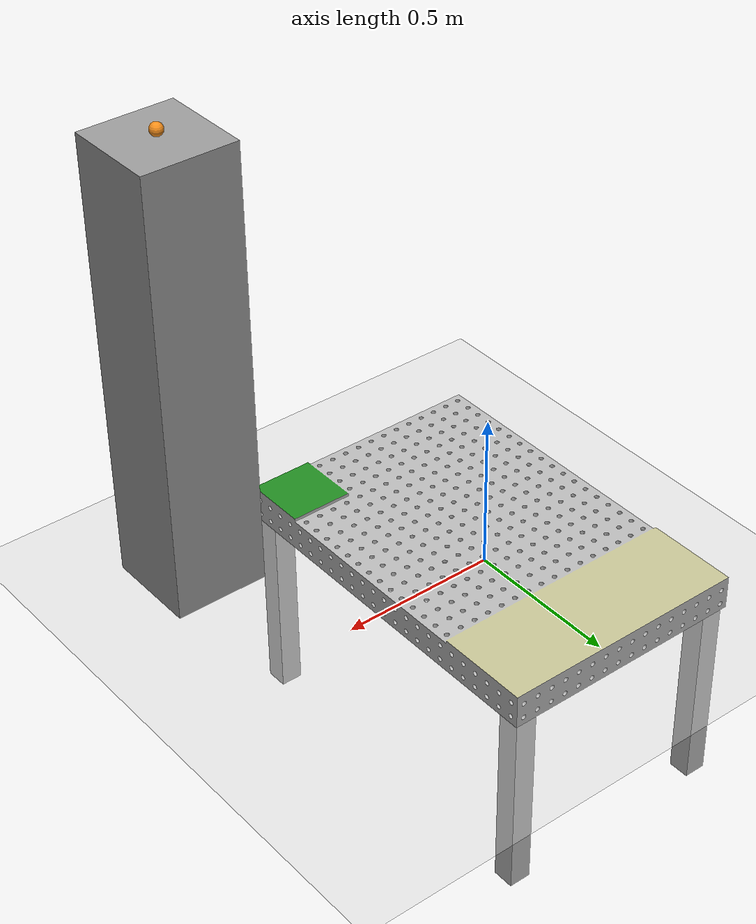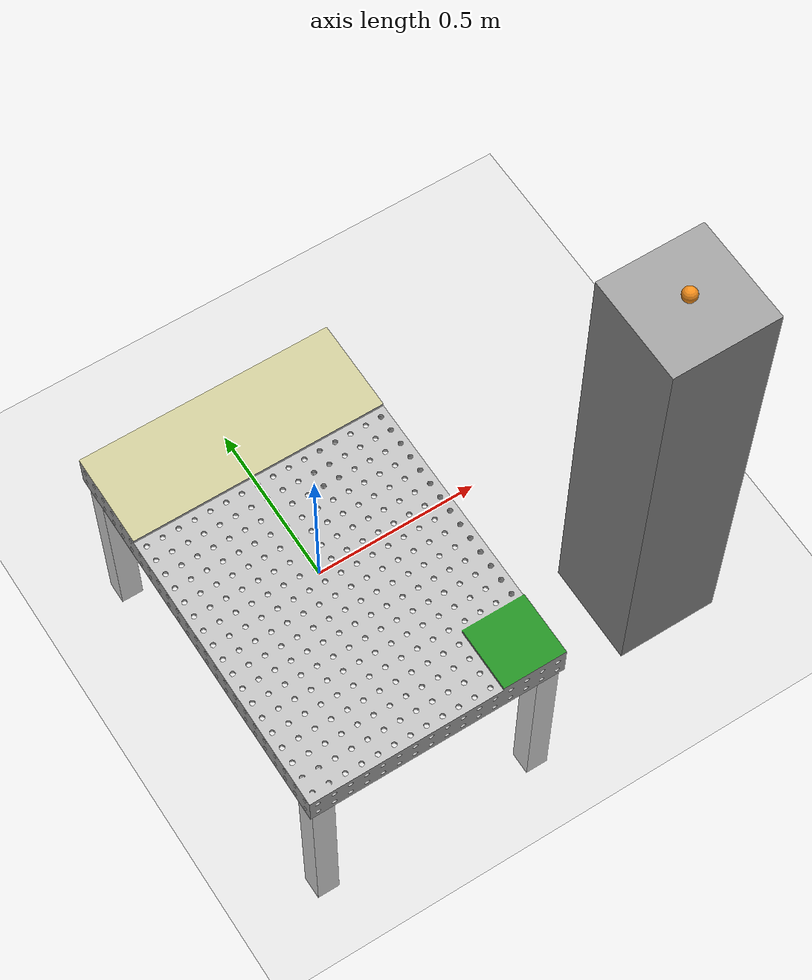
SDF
<sdf version="1.4">
 <world name="default">
  <light name="sun" type="directional">
   <pose>0 0 10 0 -0 0</pose>
   <diffuse>0.8 0.8 0.8 1</diffuse>
   <specular>0.2 0.2 0.2 1</specular>
   <attenuation>
    <range>1000</range>
    <constant>0.9</constant>
    <linear>0.01</linear>
    <quadratic>0.001</quadratic>
   </attenuation>
   <direction>-0.5 0.1 -0.9</direction>
  </light>
  <model name="ground_plane">
   <static>1</static>
   <link name="link">
    <collision name="collision">
     <geometry><plane><normal>0 0 1</normal><size>100 100</size></plane></geometry>
     <surface><friction><ode><mu>100</mu><mu2>50</mu2></ode></friction></surface>
    </collision>
    <visual name="visual">
     <cast_shadows>0</cast_shadows>
     <geometry><plane><normal>0 0 1</normal><size>100 100</size></plane></geometry>
     <material>
      <script><uri>file://media/materials/scripts/gazebo.material</uri><name>Gazebo/Grey</name></script>
     </material>
    </visual>
    <velocity_decay><linear>0</linear><angular>0</angular></velocity_decay>
   </link>
  </model>
  <physics type="ode">
   <max_step_size>0.001</max_step_size>
   <real_time_factor>1</real_time_factor>
   <real_time_update_rate>1000</real_time_update_rate>
   <gravity>0 0 -9.8</gravity>
  </physics>
  <scene><ambient>0.4 0.4 0.4 1</ambient><background>0.7 0.7 0.7 1</background><shadows>1</shadows></scene>
  <spherical_coordinates>
   <surface_model>EARTH_WGS84</surface_model>
   <latitude_deg>0</latitude_deg>
   <longitude_deg>0</longitude_deg>
   <elevation>0</elevation>
   <heading_deg>0</heading_deg>
  </spherical_coordinates>
  <model name="Ping Pong Table">
   <static>1</static>
   <link name="table">
    <visual name="visual1">
     <geometry><mesh><uri>file:///home/will/.gazebo/models/table/table.dae</uri></mesh></geometry>
    </visual>
    <collision name="collision1">
     <geometry><mesh><uri>file:///home/will/.gazebo/models/table/table.dae</uri></mesh></geometry>
     <max_contacts>100</max_contacts>
    </collision>
    <velocity_decay><linear>0</linear><angular>0</angular></velocity_decay>
   </link>
  </model>
  <model name="unit_box_1">
   <static>1</static>
   <pose>0.700002 -0.500074 0.71392 0 -0 0.00021</pose>
   <link name="link">
    <inertial>
     <mass>1</mass>
     <inertia><ixx>1</ixx><ixy>0</ixy><ixz>0</ixz><iyy>1</iyy><iyz>0</iyz><izz>1</izz></inertia>
    </inertial>
    <collision name="collision">
     <geometry><box><size>0.3 0.3 1.42784</size></box></geometry>
     <max_contacts>100</max_contacts>
    </collision>
    <visual name="visual">
     <geometry><box><size>0.3 0.3 1.42784</size></box></geometry>
     <material>
      <script><uri>file://media/materials/scripts/gazebo.material</uri><name>Gazebo/Grey</name></script>
     </material>
    </visual>
    <velocity_decay><linear>0</linear><angular>0</angular></velocity_decay>
   </link>
   <static>0</static>
  </model>
  <model name="Ping Pong Ball">
   <static>0</static>
   <link name="ball">
    <inertial>
     <mass>0.0027</mass>
     <inertia>
      <ixx>2.37e-08</ixx>
      <iyy>2.37e-08</iyy>
      <izz>2.37e-08</izz>
      <ixy>0</ixy>
      <ixz>0</ixz>
      <iyz>0</iyz>
     </inertia>
    </inertial>
    <collision name="collision">
     <geometry><sphere><radius>0.02</radius></sphere></geometry>
     <max_contacts>100</max_contacts>
     <surface>
      <bounce><restitution_coefficient>1000</restitution_coefficient><threshold>0.01</threshold></bounce>
      <contact><ode><max_vel>500</max_vel></ode></contact>
     </surface>
    </collision>
    <visual name="visual">
     <geometry><sphere><radius>0.02</radius></sphere></geometry>
     <material>
      <script><uri>file://media/materials/scripts/gazebo.material</uri><name>Gazebo/Orange</name></script>
     </material>
    </visual>
    <velocity_decay><linear>0</linear><angular>0</angular></velocity_decay>
   </link>
   <pose>0.7 -0.500012 1.44783 0.074794 0.001111 -3.14155</pose>
  </model>
 </world>
</sdf>
